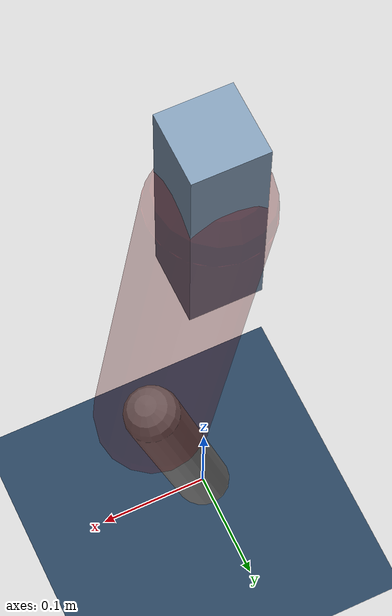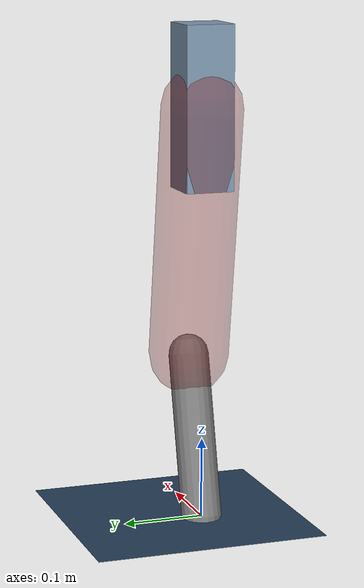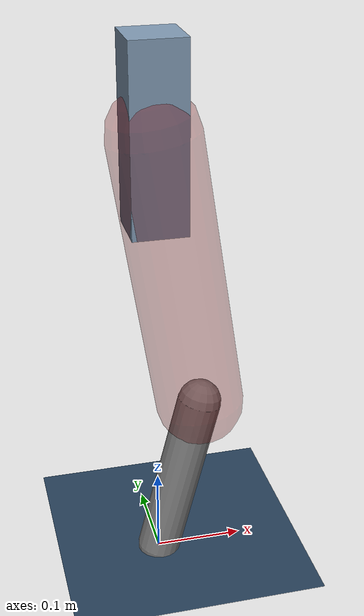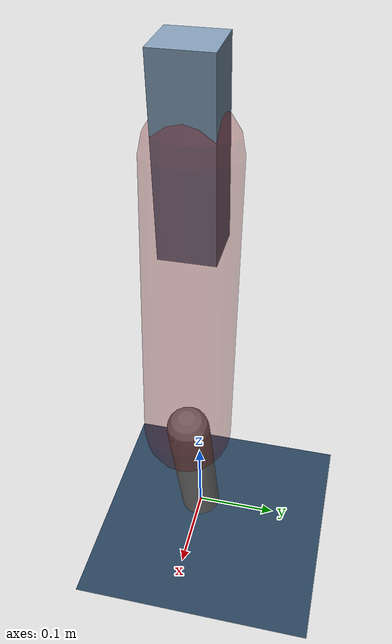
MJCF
<mujoco model="Hopper2D">
	<compiler inertiafromgeom="true" angle="radian" />
	<option timestep="0.001" integrator="implicit" cone="elliptic" solver="Newton" tolerance="1e-10" />

	<default>
		<geom contype="1" conaffinity="1" condim="3" friction="2 0.005 0.0001" solref="0.005 1" />
		<joint limited="true" damping="0.1" />
	</default>

	<asset>
		<texture name="skybox" type="skybox" builtin="gradient" rgb1=".4 .6 .8" rgb2="0 0 0" width="800" height="800" />
		<texture name="grid" type="2d" builtin="checker" rgb1=".1 .2 .3" rgb2=".2 .3 .4" width="300" height="300" mark="edge" markrgb=".2 .3 .4" />
		<material name="ground" texture="grid" texrepeat="1 1" texuniform="true" reflectance="0.1" />
		<material name="leg" rgba="0.5 0.6 0.7 1" />
	</asset>

	<worldbody>

		<geom name="floor" type="plane" size="5 5 0.25" material="ground" />

		<light directional="false" diffuse="0.8 0.8 0.8" specular="0.3 0.3 0.3" pos="0 0 2" dir="0 0 -1" />
		<light mode="targetbodycom" target="base" directional="false" diffuse="0.8 0.8 0.8" specular="0.3 0.3 0.3" pos="0 0 2" dir="0 0 -1" />

		<camera name="fixed" pos="0 -2 1" xyaxes="1 0 0 0 0 1" />
		<camera name="tracking" mode="trackcom" pos="0 -3 1" />

		<body name="root" pos="0 0 0.5132623919678172">
			<joint name="slide_x" type="slide" axis="1 0 0" range="-100 100" />
			<joint name="slide_z" type="slide" axis="0 0 1" range="0 10" />

			<body name="base" pos="0 0 0">
				<geom name="torso" type="box" size="0.03 0.03 0.1" mass="2.259" material="leg" />

				<body name="link1" pos="0 0 0" euler="0 1.4151334065811627 0">
					<joint type="hinge" axis="0 -1 0" pos="0 0 0" name="hinge1" limited="true" range="-3.14 3.14" stiffness="0" damping="0.1" />
					<geom name="thigh" type="capsule" fromto="0 0 0 0.3197991798135465 0 0" size="0.05" rgba="0.5 0 0 0.3" mass="1.0426577854965755" />

					<body name="link2" pos="0.3197991798135465 0 0" euler="0 0.40182217580542057 0">
						<joint type="hinge" axis="0 -1 0" pos="0 0 0" name="hinge2" limited="true" range="-3.14 3.14" stiffness="0" damping="0.1" />
						<geom name="shank" type="capsule" fromto="0 0 0 0.20346321215427066 0 0" size="0.025" mass="0.4038168909388436" />

					</body>
				</body>
			</body>
		</body>
	</worldbody>

	<actuator>
		<motor name="torque1" joint="hinge1" ctrlrange="-67.99099627005457 67.99099627005457" ctrllimited="true" gear="1" />
		<motor name="torque2" joint="hinge2" ctrlrange="-85.23795902560472 85.23795902560472" ctrllimited="true" gear="1" />
	</actuator>
</mujoco>
